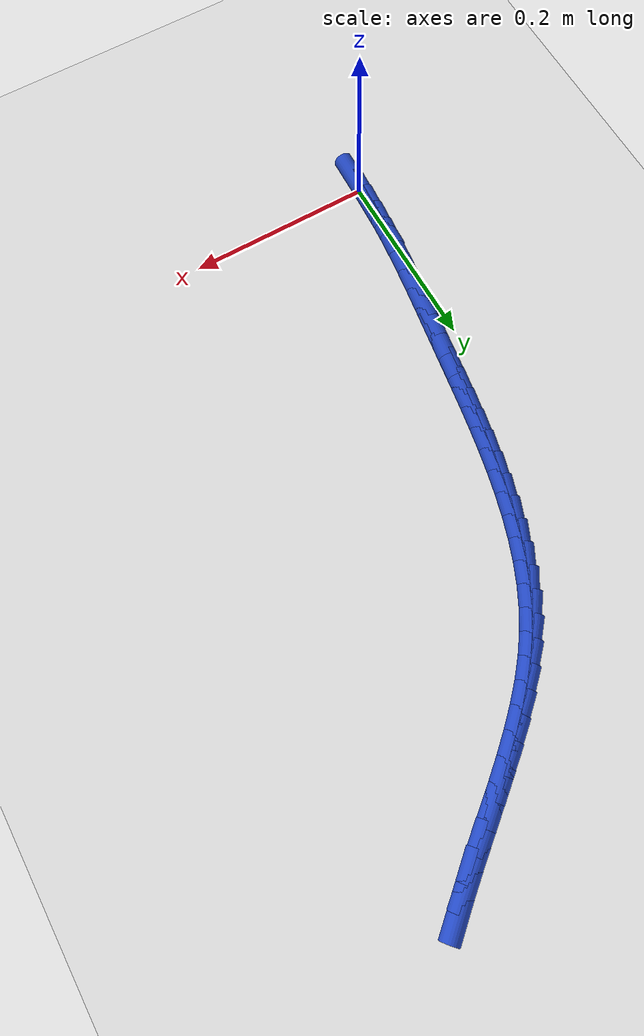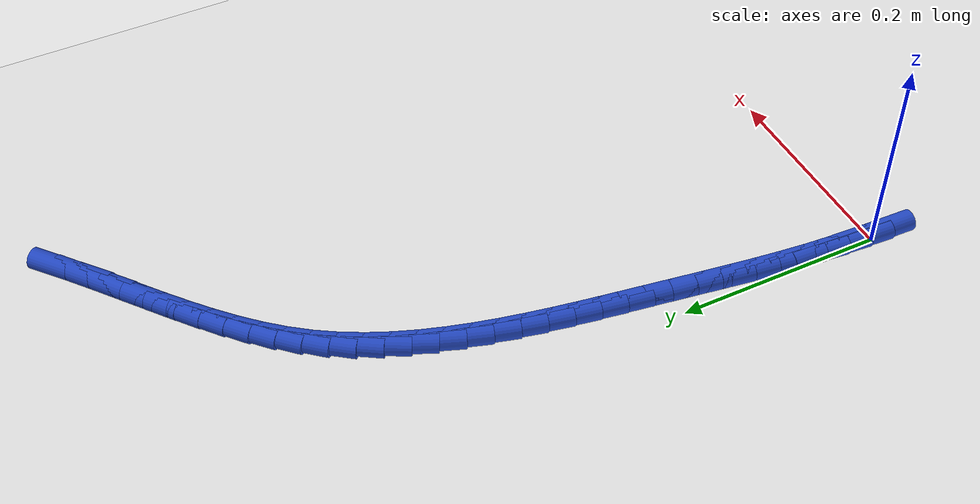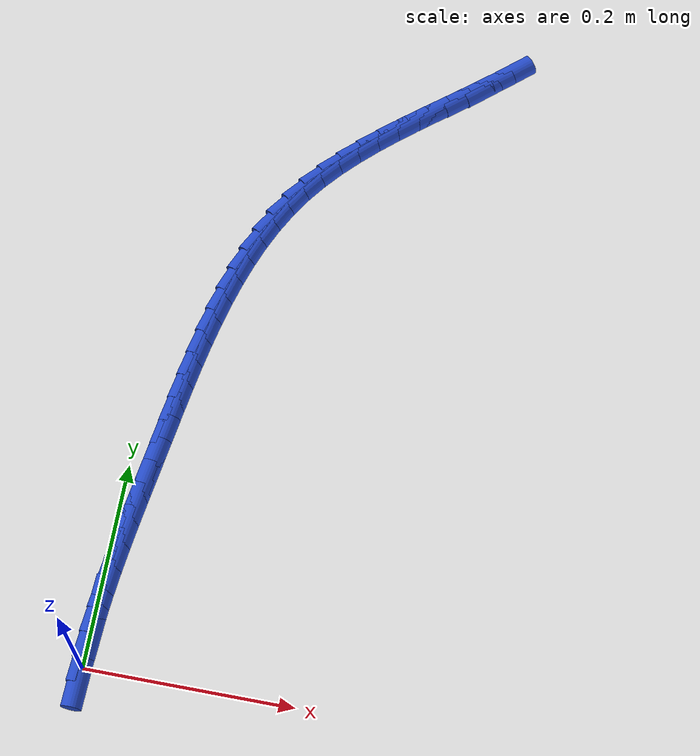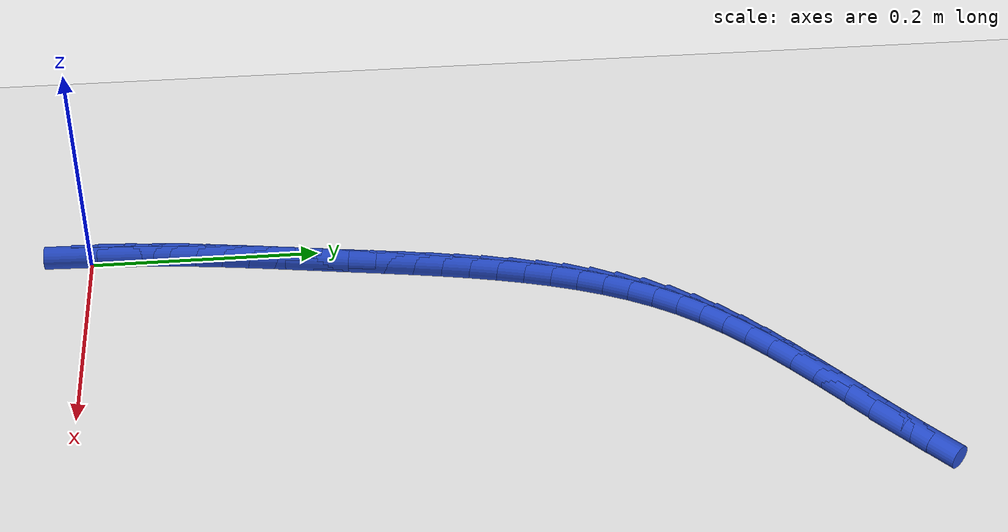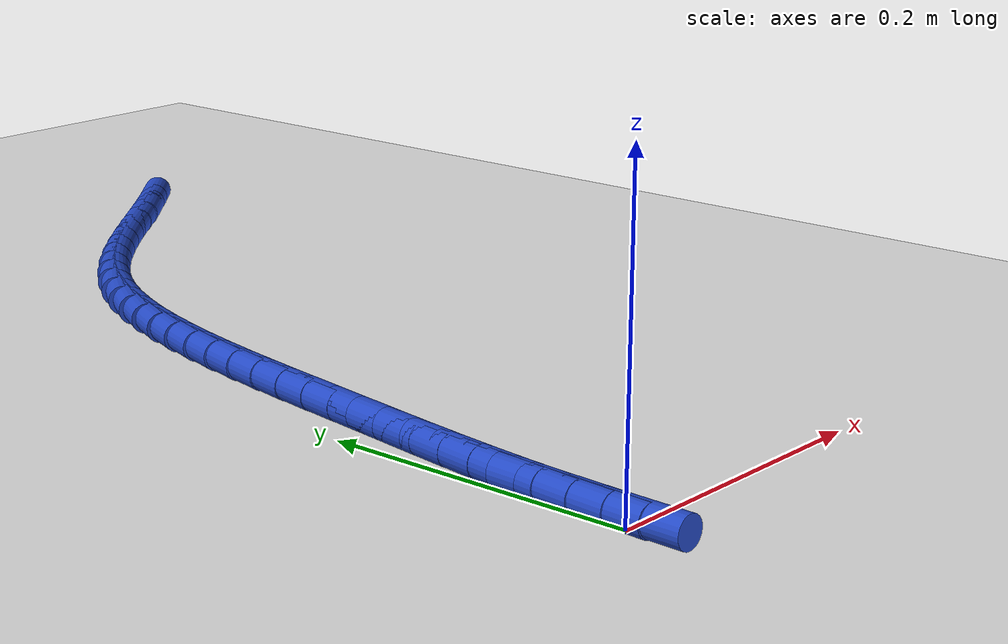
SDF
<sdf version="1.6">
 <world name="default">
  <model name="ground_plane">
   <static>1</static>
   <link name="link">
    <collision name="collision">
     <geometry><plane><normal>0 0 1</normal><size>100 100</size></plane></geometry>
     <surface><friction><ode><mu>100</mu><mu2>50</mu2></ode></friction></surface>
    </collision>
    <visual name="visual">
     <cast_shadows>0</cast_shadows>
     <geometry><plane><normal>0 0 1</normal><size>100 100</size></plane></geometry>
     <material>
      <script><uri>file://media/materials/scripts/gazebo.material</uri><name>Gazebo/WhiteGlow</name></script>
     </material>
    </visual>
   </link>
  </model>
  <model name="line">
   <link name="link_1">
    <pose>0.0007039607350209209 0.023443246292247203 0.01 0 1.57 1.5119384216422107</pose>
    <collision name="collision">
     <geometry><cylinder><radius>0.01</radius><length>0.08</length></cylinder></geometry>
    </collision>
    <visual name="visual">
     <material>
      <script><name>Gazebo/Blue</name><uri>file://media/materials/scripts/gazebo.material</uri></script>
     </material>
     <geometry><cylinder><radius>0.01</radius><length>0.08</length></cylinder></geometry>
    </visual>
   </link>
   <link name="link_2">
    <pose>0.0020833381301156046 0.04685189779126154 0.01 0 1.57 1.4868486777520553</pose>
    <collision name="collision">
     <geometry><cylinder><radius>0.01</radius><length>0.08</length></cylinder></geometry>
    </collision>
    <visual name="visual">
     <material>
      <script><name>Gazebo/Blue</name><uri>file://media/materials/scripts/gazebo.material</uri></script>
     </material>
     <geometry><cylinder><radius>0.01</radius><length>0.08</length></cylinder></geometry>
    </visual>
   </link>
   <link name="link_3">
    <pose>0.004052448588189521 0.07025318096007596 0.01 0 1.57 1.4655910035733346</pose>
    <collision name="collision">
     <geometry><cylinder><radius>0.01</radius><length>0.08</length></cylinder></geometry>
    </collision>
    <visual name="visual">
     <material>
      <script><name>Gazebo/Blue</name><uri>file://media/materials/scripts/gazebo.material</uri></script>
     </material>
     <geometry><cylinder><radius>0.01</radius><length>0.08</length></cylinder></geometry>
    </visual>
   </link>
   <link name="link_4">
    <pose>0.006525608512148148 0.09367432226172344 0.01 0 1.57 1.4482039419232804</pose>
    <collision name="collision">
     <geometry><cylinder><radius>0.01</radius><length>0.08</length></cylinder></geometry>
    </collision>
    <visual name="visual">
     <material>
      <script><name>Gazebo/Blue</name><uri>file://media/materials/scripts/gazebo.material</uri></script>
     </material>
     <geometry><cylinder><radius>0.01</radius><length>0.08</length></cylinder></geometry>
    </visual>
   </link>
   <link name="link_5">
    <pose>0.009417134304896966 0.11714254815923696 0.01 0 1.57 1.434690596058609</pose>
    <collision name="collision">
     <geometry><cylinder><radius>0.01</radius><length>0.08</length></cylinder></geometry>
    </collision>
    <visual name="visual">
     <material>
      <script><name>Gazebo/Blue</name><uri>file://media/materials/scripts/gazebo.material</uri></script>
     </material>
     <geometry><cylinder><radius>0.01</radius><length>0.08</length></cylinder></geometry>
    </visual>
   </link>
   <link name="link_6">
    <pose>0.01264134236934146 0.14068508511564942 0.01 0 1.57 1.425026799253435</pose>
    <collision name="collision">
     <geometry><cylinder><radius>0.01</radius><length>0.08</length></cylinder></geometry>
    </collision>
    <visual name="visual">
     <material>
      <script><name>Gazebo/Blue</name><uri>file://media/materials/scripts/gazebo.material</uri></script>
     </material>
     <geometry><cylinder><radius>0.01</radius><length>0.08</length></cylinder></geometry>
    </visual>
   </link>
   <link name="link_7">
    <pose>0.016112549108387095 0.16432915959399383 0.01 0 1.57 1.4191678046188034</pose>
    <collision name="collision">
     <geometry><cylinder><radius>0.01</radius><length>0.08</length></cylinder></geometry>
    </collision>
    <visual name="visual">
     <material>
      <script><name>Gazebo/Blue</name><uri>file://media/materials/scripts/gazebo.material</uri></script>
     </material>
     <geometry><cylinder><radius>0.01</radius><length>0.08</length></cylinder></geometry>
    </visual>
   </link>
   <link name="link_8">
    <pose>0.019745070924939368 0.18810199805730313 0.01 0 1.57 1.4170532946250656</pose>
    <collision name="collision">
     <geometry><cylinder><radius>0.01</radius><length>0.08</length></cylinder></geometry>
    </collision>
    <visual name="visual">
     <material>
      <script><name>Gazebo/Blue</name><uri>file://media/materials/scripts/gazebo.material</uri></script>
     </material>
     <geometry><cylinder><radius>0.01</radius><length>0.08</length></cylinder></geometry>
    </visual>
   </link>
   <link name="link_9">
    <pose>0.023453224221903744 0.21203082696861025 0.01 0 1.57 1.4183336058897658</pose>
    <collision name="collision">
     <geometry><cylinder><radius>0.01</radius><length>0.08</length></cylinder></geometry>
    </collision>
    <visual name="visual">
     <material>
      <script><name>Gazebo/Blue</name><uri>file://media/materials/scripts/gazebo.material</uri></script>
     </material>
     <geometry><cylinder><radius>0.01</radius><length>0.08</length></cylinder></geometry>
    </visual>
   </link>
   <link name="link_10">
    <pose>0.027157594450842166 0.2361391668995262 0.01 0 1.57 1.4181682066567567</pose>
    <collision name="collision">
     <geometry><cylinder><radius>0.01</radius><length>0.08</length></cylinder></geometry>
    </collision>
    <visual name="visual">
     <material>
      <script><name>Gazebo/Blue</name><uri>file://media/materials/scripts/gazebo.material</uri></script>
     </material>
     <geometry><cylinder><radius>0.01</radius><length>0.08</length></cylinder></geometry>
    </visual>
   </link>
   <link name="link_11">
    <pose>0.03088739949409216 0.26038632134257494 0.01 0 1.57 1.4125491955962404</pose>
    <collision name="collision">
     <geometry><cylinder><radius>0.01</radius><length>0.08</length></cylinder></geometry>
    </collision>
    <visual name="visual">
     <material>
      <script><name>Gazebo/Blue</name><uri>file://media/materials/scripts/gazebo.material</uri></script>
     </material>
     <geometry><cylinder><radius>0.01</radius><length>0.08</length></cylinder></geometry>
    </visual>
   </link>
   <link name="link_12">
    <pose>0.03476378162770155 0.28467725351621387 0.01 0 1.57 1.4013418805655828</pose>
    <collision name="collision">
     <geometry><cylinder><radius>0.01</radius><length>0.08</length></cylinder></geometry>
    </collision>
    <visual name="visual">
     <material>
      <script><name>Gazebo/Blue</name><uri>file://media/materials/scripts/gazebo.material</uri></script>
     </material>
     <geometry><cylinder><radius>0.01</radius><length>0.08</length></cylinder></geometry>
    </visual>
   </link>
   <link name="link_13">
    <pose>0.03891078132629113 0.3089152133950223 0.01 0 1.57 1.3844414244940548</pose>
    <collision name="collision">
     <geometry><cylinder><radius>0.01</radius><length>0.08</length></cylinder></geometry>
    </collision>
    <visual name="visual">
     <material>
      <script><name>Gazebo/Blue</name><uri>file://media/materials/scripts/gazebo.material</uri></script>
     </material>
     <geometry><cylinder><radius>0.01</radius><length>0.08</length></cylinder></geometry>
    </visual>
   </link>
   <link name="link_14">
    <pose>0.04345243906448163 0.3330034509535796 0.01 0 1.57 1.3616524891348782</pose>
    <collision name="collision">
     <geometry><cylinder><radius>0.01</radius><length>0.08</length></cylinder></geometry>
    </collision>
    <visual name="visual">
     <material>
      <script><name>Gazebo/Blue</name><uri>file://media/materials/scripts/gazebo.material</uri></script>
     </material>
     <geometry><cylinder><radius>0.01</radius><length>0.08</length></cylinder></geometry>
    </visual>
   </link>
   <link name="link_15">
    <pose>0.048512795316893856 0.35684521616646536 0.01 0 1.57 1.3327000092562877</pose>
    <collision name="collision">
     <geometry><cylinder><radius>0.01</radius><length>0.08</length></cylinder></geometry>
    </collision>
    <visual name="visual">
     <material>
      <script><name>Gazebo/Blue</name><uri>file://media/materials/scripts/gazebo.material</uri></script>
     </material>
     <geometry><cylinder><radius>0.01</radius><length>0.08</length></cylinder></geometry>
    </visual>
   </link>
   <link name="link_16">
    <pose>0.05421589055814851 0.3803437590082587 0.01 0 1.57 1.2972458100620468</pose>
    <collision name="collision">
     <geometry><cylinder><radius>0.01</radius><length>0.08</length></cylinder></geometry>
    </collision>
    <visual name="visual">
     <material>
      <script><name>Gazebo/Blue</name><uri>file://media/materials/scripts/gazebo.material</uri></script>
     </material>
     <geometry><cylinder><radius>0.01</radius><length>0.08</length></cylinder></geometry>
    </visual>
   </link>
   <link name="link_17">
    <pose>0.06068576526286641 0.40340232945353915 0.01 0 1.57 1.2549149986245636</pose>
    <collision name="collision">
     <geometry><cylinder><radius>0.01</radius><length>0.08</length></cylinder></geometry>
    </collision>
    <visual name="visual">
     <material>
      <script><name>Gazebo/Blue</name><uri>file://media/materials/scripts/gazebo.material</uri></script>
     </material>
     <geometry><cylinder><radius>0.01</radius><length>0.08</length></cylinder></geometry>
    </visual>
   </link>
   <link name="link_18">
    <pose>0.06804645990566827 0.42592417747688605 0.01 0 1.57 1.205337002489549</pose>
    <collision name="collision">
     <geometry><cylinder><radius>0.01</radius><length>0.08</length></cylinder></geometry>
    </collision>
    <visual name="visual">
     <material>
      <script><name>Gazebo/Blue</name><uri>file://media/materials/scripts/gazebo.material</uri></script>
     </material>
     <geometry><cylinder><radius>0.01</radius><length>0.08</length></cylinder></geometry>
    </visual>
   </link>
   <link name="link_19">
    <pose>0.07642201496117487 0.4478125530528787 0.01 0 1.57 1.148206278163256</pose>
    <collision name="collision">
     <geometry><cylinder><radius>0.01</radius><length>0.08</length></cylinder></geometry>
    </collision>
    <visual name="visual">
     <material>
      <script><name>Gazebo/Blue</name><uri>file://media/materials/scripts/gazebo.material</uri></script>
     </material>
     <geometry><cylinder><radius>0.01</radius><length>0.08</length></cylinder></geometry>
    </visual>
   </link>
   <link name="link_20">
    <pose>0.085936470904007 0.46897070615609676 0.01 0 1.57 1.0833658826943948</pose>
    <collision name="collision">
     <geometry><cylinder><radius>0.01</radius><length>0.08</length></cylinder></geometry>
    </collision>
    <visual name="visual">
     <material>
      <script><name>Gazebo/Blue</name><uri>file://media/materials/scripts/gazebo.material</uri></script>
     </material>
     <geometry><cylinder><radius>0.01</radius><length>0.08</length></cylinder></geometry>
    </visual>
   </link>
   <link name="link_21">
    <pose>0.09671386820878536 0.48930188676111935 0.01 0 1.57 1.0109116515607788</pose>
    <collision name="collision">
     <geometry><cylinder><radius>0.01</radius><length>0.08</length></cylinder></geometry>
    </collision>
    <visual name="visual">
     <material>
      <script><name>Gazebo/Blue</name><uri>file://media/materials/scripts/gazebo.material</uri></script>
     </material>
     <geometry><cylinder><radius>0.01</radius><length>0.08</length></cylinder></geometry>
    </visual>
   </link>
   <link name="link_22">
    <pose>0.10887824735013077 0.508709344842526 0.01 0 1.57 0.9339457229736611</pose>
    <collision name="collision">
     <geometry><cylinder><radius>0.01</radius><length>0.08</length></cylinder></geometry>
    </collision>
    <visual name="visual">
     <material>
      <script><name>Gazebo/Blue</name><uri>file://media/materials/scripts/gazebo.material</uri></script>
     </material>
     <geometry><cylinder><radius>0.01</radius><length>0.08</length></cylinder></geometry>
    </visual>
   </link>
   <link name="link_23">
    <pose>0.12250541340928028 0.5271328987845552 0.01 0 1.57 0.8646154950748048</pose>
    <collision name="collision">
     <geometry><cylinder><radius>0.01</radius><length>0.08</length></cylinder></geometry>
    </collision>
    <visual name="visual">
     <material>
      <script><name>Gazebo/Blue</name><uri>file://media/materials/scripts/gazebo.material</uri></script>
     </material>
     <geometry><cylinder><radius>0.01</radius><length>0.08</length></cylinder></geometry>
    </visual>
   </link>
   <link name="link_24">
    <pose>0.13746308212700556 0.5446701244958287 0.01 0 1.57 0.80641069232532</pose>
    <collision name="collision">
     <geometry><cylinder><radius>0.01</radius><length>0.08</length></cylinder></geometry>
    </collision>
    <visual name="visual">
     <material>
      <script><name>Gazebo/Blue</name><uri>file://media/materials/scripts/gazebo.material</uri></script>
     </material>
     <geometry><cylinder><radius>0.01</radius><length>0.08</length></cylinder></geometry>
    </visual>
   </link>
   <link name="link_25">
    <pose>0.1535628673113773 0.5614611301069279 0.01 0 1.57 0.7592710794637001</pose>
    <collision name="collision">
     <geometry><cylinder><radius>0.01</radius><length>0.08</length></cylinder></geometry>
    </collision>
    <visual name="visual">
     <material>
      <script><name>Gazebo/Blue</name><uri>file://media/materials/scripts/gazebo.material</uri></script>
     </material>
     <geometry><cylinder><radius>0.01</radius><length>0.08</length></cylinder></geometry>
    </visual>
   </link>
   <link name="link_26">
    <pose>0.17061638193874673 0.5776460243789798 0.01 0 1.57 0.7228648250027255</pose>
    <collision name="collision">
     <geometry><cylinder><radius>0.01</radius><length>0.08</length></cylinder></geometry>
    </collision>
    <visual name="visual">
     <material>
      <script><name>Gazebo/Blue</name><uri>file://media/materials/scripts/gazebo.material</uri></script>
     </material>
     <geometry><cylinder><radius>0.01</radius><length>0.08</length></cylinder></geometry>
    </visual>
   </link>
   <link name="link_27">
    <pose>0.18843523898546488 0.5933649160731121 0.01 0 1.57 0.6967609345195616</pose>
    <collision name="collision">
     <geometry><cylinder><radius>0.01</radius><length>0.08</length></cylinder></geometry>
    </collision>
    <visual name="visual">
     <material>
      <script><name>Gazebo/Blue</name><uri>file://media/materials/scripts/gazebo.material</uri></script>
     </material>
     <geometry><cylinder><radius>0.01</radius><length>0.08</length></cylinder></geometry>
    </visual>
   </link>
   <link name="link_28">
    <pose>0.20683105142788316 0.6087579139504528 0.01 0 1.57 0.680547251542199</pose>
    <collision name="collision">
     <geometry><cylinder><radius>0.01</radius><length>0.08</length></cylinder></geometry>
    </collision>
    <visual name="visual">
     <material>
      <script><name>Gazebo/Blue</name><uri>file://media/materials/scripts/gazebo.material</uri></script>
     </material>
     <geometry><cylinder><radius>0.01</radius><length>0.08</length></cylinder></geometry>
    </visual>
   </link>
   <link name="link_29">
    <pose>0.22561543224235261 0.6239651267721288 0.01 0 1.57 0.6739016617673588</pose>
    <collision name="collision">
     <geometry><cylinder><radius>0.01</radius><length>0.08</length></cylinder></geometry>
    </collision>
    <visual name="visual">
     <material>
      <script><name>Gazebo/Blue</name><uri>file://media/materials/scripts/gazebo.material</uri></script>
     </material>
     <geometry><cylinder><radius>0.01</radius><length>0.08</length></cylinder></geometry>
    </visual>
   </link>
   <link name="link_30">
    <pose>0.24459999440522437 0.6391266632992677 0.01 0 1.57 0.6766281729278946</pose>
    <collision name="collision">
     <geometry><cylinder><radius>0.01</radius><length>0.08</length></cylinder></geometry>
    </collision>
    <visual name="visual">
     <material>
      <script><name>Gazebo/Blue</name><uri>file://media/materials/scripts/gazebo.material</uri></script>
     </material>
     <geometry><cylinder><radius>0.01</radius><length>0.08</length></cylinder></geometry>
    </visual>
   </link>
   <link name="link_31">
    <pose>0.2635963508928498 0.6543826322929973 0.01 0 1.57 0.6886672748198519</pose>
    <collision name="collision">
     <geometry><cylinder><radius>0.01</radius><length>0.08</length></cylinder></geometry>
    </collision>
    <visual name="visual">
     <material>
      <script><name>Gazebo/Blue</name><uri>file://media/materials/scripts/gazebo.material</uri></script>
     </material>
     <geometry><cylinder><radius>0.01</radius><length>0.08</length></cylinder></geometry>
    </visual>
   </link>
   <link name="link_32">
    <pose>0.28241611468157996 0.6698731425144453 0.01 0 1.57 0.7100357722436533</pose>
    <collision name="collision">
     <geometry><cylinder><radius>0.01</radius><length>0.08</length></cylinder></geometry>
    </collision>
    <visual name="visual">
     <material>
      <script><name>Gazebo/Blue</name><uri>file://media/materials/scripts/gazebo.material</uri></script>
     </material>
     <geometry><cylinder><radius>0.01</radius><length>0.08</length></cylinder></geometry>
    </visual>
   </link>
   <link name="link_280">
    <pose>-1.0408340855860843e-17 1.734723475976807e-16 0.01 0 1.57 1.539874490343812</pose>
    <collision name="collision">
     <geometry><cylinder><radius>0.01</radius><length>0.08</length></cylinder></geometry>
    </collision>
    <visual name="visual">
     <material>
      <script><name>Gazebo/Blue</name><uri>file://media/materials/scripts/gazebo.material</uri></script>
     </material>
     <geometry><cylinder><radius>0.01</radius><length>0.08</length></cylinder></geometry>
    </visual>
   </link>
   <link name="link_281">
    <pose>0.0007249367068349047 0.02343669469411991 0.01 0 1.57 1.505562522907625</pose>
    <collision name="collision">
     <geometry><cylinder><radius>0.01</radius><length>0.08</length></cylinder></geometry>
    </collision>
    <visual name="visual">
     <material>
      <script><name>Gazebo/Blue</name><uri>file://media/materials/scripts/gazebo.material</uri></script>
     </material>
     <geometry><cylinder><radius>0.01</radius><length>0.08</length></cylinder></geometry>
    </visual>
   </link>
   <link name="link_282">
    <pose>0.002251145904627494 0.046799485006242376 0.01 0 1.57 1.522731437199868</pose>
    <collision name="collision">
     <geometry><cylinder><radius>0.01</radius><length>0.08</length></cylinder></geometry>
    </collision>
    <visual name="visual">
     <material>
      <script><name>Gazebo/Blue</name><uri>file://media/materials/scripts/gazebo.material</uri></script>
     </material>
     <geometry><cylinder><radius>0.01</radius><length>0.08</length></cylinder></geometry>
    </visual>
   </link>
  </model>
 </world>
</sdf>
